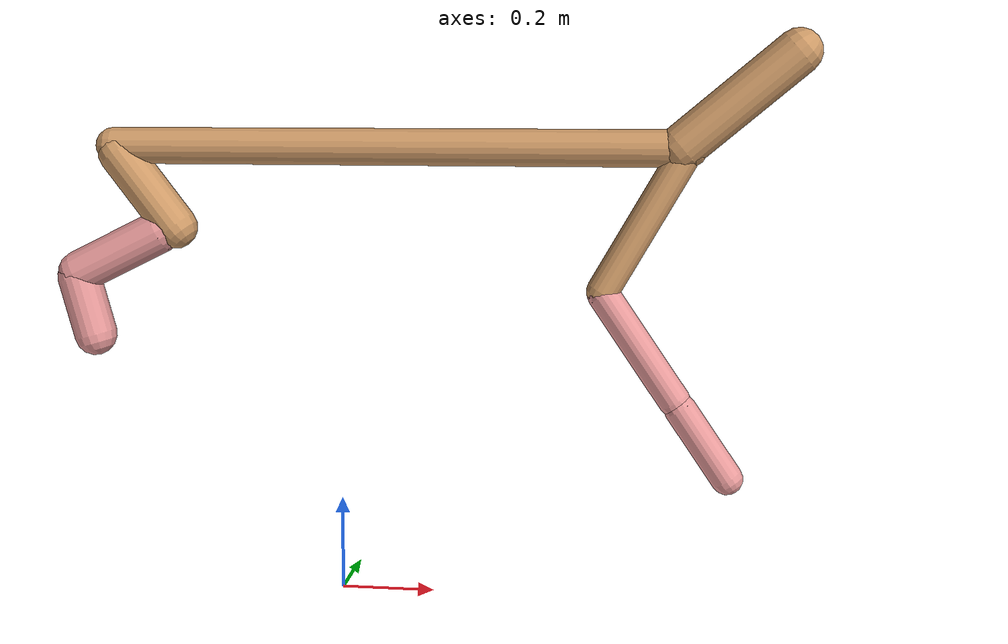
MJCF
<mujoco model="cheetah">
  <compiler angle="radian" coordinate="local" inertiafromgeom="true" settotalmass="14" />
  <default>
    <joint armature=".1" damping=".01" limited="true" solimplimit="0 .8 .03" solreflimit=".02 1" stiffness="8" />
    <geom conaffinity="0" condim="3" contype="1" friction="0.8 .1 .1" rgba="0.8 0.6 .4 1" solimp="0.0 0.8 0.01" solref="0.02 1" />
    <motor ctrllimited="true" ctrlrange="-1 1" />
  </default>
  <size nstack="300000" nuser_geom="1" />
  <option gravity="0 0 -9.81" timestep="0.01" />
  <worldbody>
    <body name="torso" pos="0.0 0.0 0.9630198666049614">
      <joint armature="0" axis="1 0 0" damping="0" limited="false" name="ignorex" pos="0 0 0" stiffness="0" type="slide" />
      <joint armature="0" axis="0 0 1" damping="0" limited="false" name="ignorez" pos="0 0 0" stiffness="0" type="slide" />
      <joint armature="0" axis="0 1 0" damping="0" limited="false" name="ignorey" pos="0 0 0" stiffness="0" type="hinge" />
      <geom fromto="-0.5 0.0 0.0 0.7298809560899415 0.0 0.0" name="torso" size="0.03910391374009217" type="capsule" />
      <geom axisangle="0 1 0 .87" name="head" pos="0.8298809560899415 0.0 0.1" size="0.048135039911409216 0.15" type="capsule" />

      <body name="bthigh" pos="-.5 0 0">
        <joint axis="0 1 0" damping="6" name="bthigh" pos="0 0 0" range="-.52 1.05" stiffness="240" type="hinge" />
        <geom axisangle="0 1 0 -3.8" name="bthigh" pos="0.0734775819030384 0.0 -0.0955208564739499" size="0.04659266599914606 0.10149999999999999" type="capsule" />
        <body name="bshin" pos="0.10695516380607678 0.0 -0.18104171294789978">
          <joint axis="0 1 0" damping="4.5" name="bshin" pos="0 0 0" range="-.785 .785" stiffness="180" type="hinge" />
          <geom axisangle="0 1 0 -2.03" name="bshin" pos="-0.0997507764050038 0.0 -0.0498753882025019" rgba="0.9 0.6 0.6 1" size="0.04659266599914606 0.105" type="capsule" />
          <body name="bfoot" pos="-0.1995015528100076 0.0 -0.0997507764050038">
            <joint axis="0 1 0" damping="3" name="bfoot" pos="0 0 0" range="-.4 .785" stiffness="120" type="hinge" />
            <geom axisangle="0 1 0 -.27" name="bfoot" pos="0.021667753813597694 0.0 -0.07005907066396588" rgba="0.9 0.6 0.6 1" size="0.04659266599914606 0.0658" type="capsule" />
            <inertial mass="10" />
          </body>
        </body>
      </body>
      <body name="fthigh" pos="0.7298809560899415 0.0 0.0">
        <joint axis="0 1 0" damping="4.5" name="fthigh" pos="0 0 0" range="-1.5 0.8" stiffness="180" type="hinge" />
        <geom axisangle="0 1 0 .52" name="fthigh" pos="-0.08843748531306161 0.0 -0.15160711767953416" size="0.03401662688624794 0.1695916760025731" type="capsule" />
        <body name="fshin" pos="-0.17687497062612323 0.0 -0.30321423535906833">
          <joint axis="0 1 0" damping="3" name="fshin" pos="0 0 0" range="-1.2 1.1" stiffness="120" type="hinge" />
          <geom axisangle="0 1 0 -.6" name="fshin" pos="0.0820748311938122 0.0 -0.11364207396066305" rgba="0.9 0.6 0.6 1" size="0.03401662688624794 0.13516329064866728" type="capsule" />
          <body name="ffoot" pos="0.1641496623876244 0.0 -0.2272841479213261">
            <joint axis="0 1 0" damping="1.5" name="ffoot" pos="0 0 0" range="-3.1 -0.3" stiffness="60" type="hinge" />
            <geom axisangle="0 1 0 -.6" name="ffoot" pos="0.05541432977751336 0.0 -0.08620006854279856" rgba="0.9 0.6 0.6 1" size="0.03401662688624794 0.08925877684345954" type="capsule" />
            <inertial mass="10" />
          </body>
        </body>
      </body>
    </body>
  </worldbody>
  <actuator>
    <motor gear="120" joint="bthigh" name="bthigh" />
    <motor gear="90" joint="bshin" name="bshin" />
    <motor gear="60" joint="bfoot" name="bfoot" />
    <motor gear="120" joint="fthigh" name="fthigh" />
    <motor gear="60" joint="fshin" name="fshin" />
    <motor gear="30" joint="ffoot" name="ffoot" />
  </actuator>
</mujoco>
